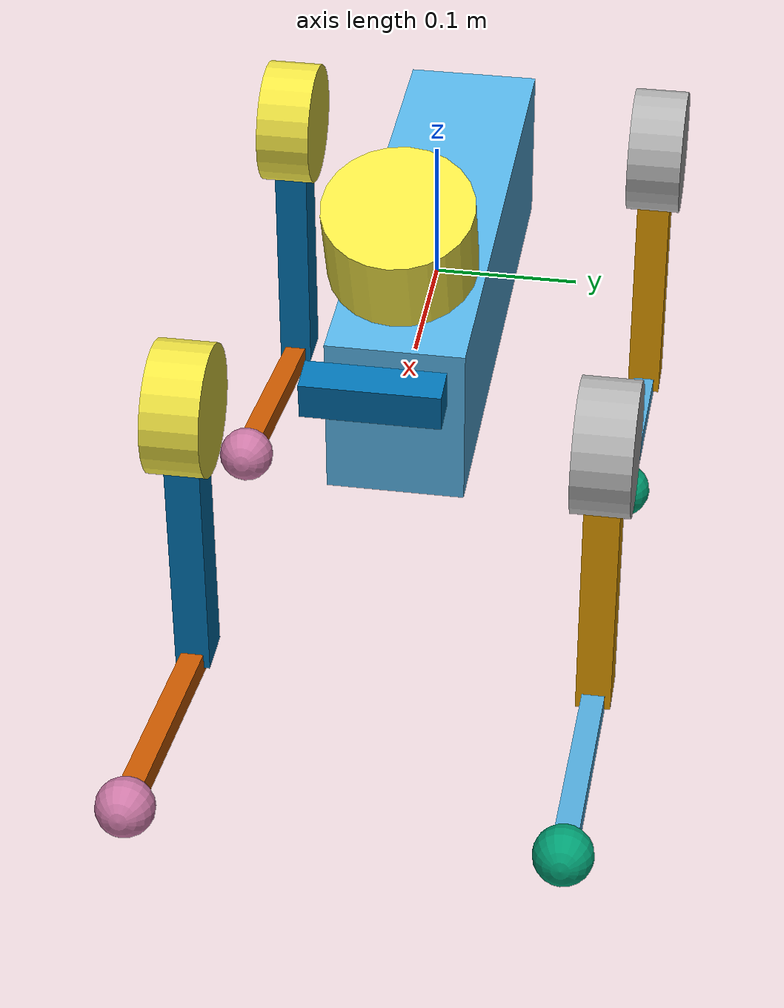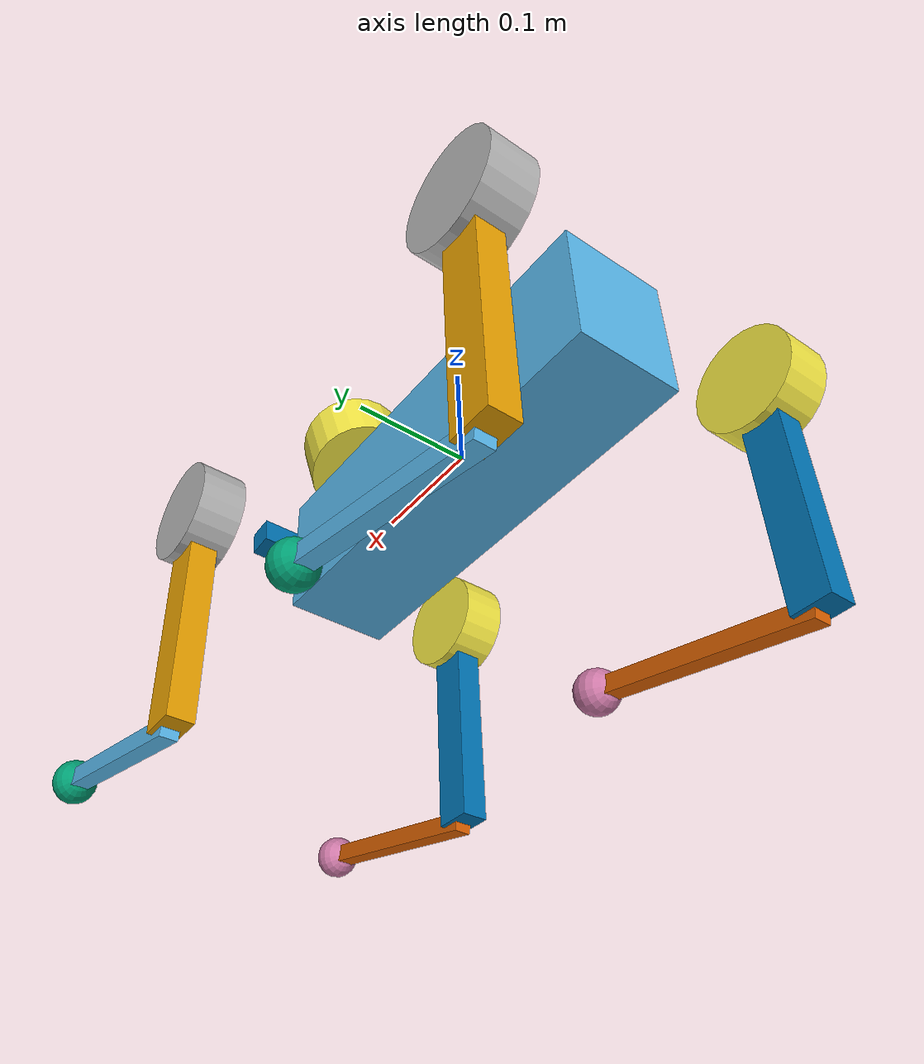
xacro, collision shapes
<?xml version="1.0"?>
<!--
  Go2 with standard gz_ros2_control + MID-360 + D435 sensors.
  Uses effort-only command interface (standard gz_ros2_control plugin).
-->
<robot name="go2" xmlns:xacro="http://www.ros.org/wiki/xacro">

  <!-- Go2 constants + materials + leg macro from upstream -->
  <xacro:include filename="$(find go2_description)/xacro/const.xacro"/>
  <xacro:include filename="$(find go2_description)/xacro/materials.xacro"/>
  <xacro:include filename="$(find go2_description)/xacro/leg.xacro"/>

  <!-- Our ros2_control config (standard gz_ros2_control, NOT custom gz_quadruped_hardware) -->
  <xacro:include filename="gazebo_ros2_control.xacro"/>

  <!-- Robot structure -->
  <link name="base">
    <visual>
      <geometry><box size="0.001 0.001 0.001"/></geometry>
    </visual>
  </link>

  <joint name="floating_base" type="fixed">
    <origin rpy="0 0 0" xyz="0 0 0"/>
    <parent link="base"/>
    <child link="trunk"/>
  </joint>

  <link name="trunk">
    <visual>
      <geometry>
        <mesh filename="file://$(find go2_description)/meshes/trunk.dae" scale="1 1 1"/>
      </geometry>
    </visual>
    <collision>
      <geometry><box size="${trunk_length} ${trunk_width} ${trunk_height}"/></geometry>
    </collision>
    <inertial>
      <origin rpy="0 0 0" xyz="${trunk_com_x} ${trunk_com_y} ${trunk_com_z}"/>
      <mass value="${trunk_mass}"/>
      <inertia ixx="${trunk_ixx}" ixy="${trunk_ixy}" ixz="${trunk_ixz}"
               iyy="${trunk_iyy}" iyz="${trunk_iyz}" izz="${trunk_izz}"/>
    </inertial>
  </link>

  <joint name="imu_joint" type="fixed">
    <parent link="trunk"/>
    <child link="imu_link"/>
    <origin rpy="0 0 0" xyz="0 0 0"/>
  </joint>

  <link name="imu_link">
    <inertial>
      <mass value="0.001"/>
      <inertia ixx="0.0001" ixy="0" ixz="0" iyy="0.0001" iyz="0" izz="0.0001"/>
    </inertial>
    <visual><geometry><box size="0.001 0.001 0.001"/></geometry></visual>
    <collision><geometry><box size="0.001 0.001 0.001"/></geometry></collision>
  </link>

  <!-- Legs -->
  <xacro:leg name="FR" mirror="-1" mirror_dae="False" front_hind="1" front_hind_dae="True"/>
  <xacro:leg name="FL" mirror="1" mirror_dae="True" front_hind="1" front_hind_dae="True"/>
  <xacro:leg name="RR" mirror="-1" mirror_dae="False" front_hind="-1" front_hind_dae="False"/>
  <xacro:leg name="RL" mirror="1" mirror_dae="True" front_hind="-1" front_hind_dae="False"/>

  <!-- External sensors -->
  <xacro:include filename="sensors.xacro"/>

</robot>

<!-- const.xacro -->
<robot xmlns:xacro="http://www.ros.org/wiki/xacro">

    <!-- Constants for robot dimensions -->
    <xacro:property name="PI" value="3.1415926535897931"/>
    <xacro:property name="stick_mass" value="0.00001"/>

    <!-- simplified collision value -->
    <xacro:property name="trunk_width" value="0.0935"/>
    <xacro:property name="trunk_length" value="0.3762"/>
    <xacro:property name="trunk_height" value="0.114"/>
    <xacro:property name="hip_radius" value="0.046"/>
    <xacro:property name="hip_length" value="0.04"/>
    <xacro:property name="thigh_shoulder_radius" value="0.041"/>
    <xacro:property name="thigh_shoulder_length" value="0.032"/>
    <xacro:property name="thigh_width" value="0.0245"/>
    <xacro:property name="thigh_height" value="0.034"/>
    <xacro:property name="calf_width" value="0.016"/>
    <xacro:property name="calf_height" value="0.016"/>
    <xacro:property name="foot_radius" value="0.02"/>
    <xacro:property name="stick_radius" value="0.01"/>
    <xacro:property name="stick_length" value="0.2"/>

    <!-- kinematic value -->
    <xacro:property name="thigh_offset" value="0.0955"/>
    <xacro:property name="thigh_length" value="0.213"/>
    <xacro:property name="calf_length" value="0.213"/>

    <!-- leg offset from trunk center value -->
    <xacro:property name="leg_offset_x" value="0.1934"/>
    <xacro:property name="leg_offset_y" value="0.0465"/>
    <xacro:property name="hip_offset" value="0.0955"/>

    <!-- offset of link locations (left front) -->
    <xacro:property name="hip_offset_x" value="0.1934"/>
    <xacro:property name="hip_offset_y" value="0.0465"/>
    <xacro:property name="hip_offset_z" value="0.0"/>

    <xacro:property name="thigh_offset_x" value="0"/>
    <xacro:property name="thigh_offset_y" value="0.0955"/>
    <xacro:property name="thigh_offset_z" value="0.0"/>

    <xacro:property name="calf_offset_x" value="0.0"/>
    <xacro:property name="calf_offset_y" value="0.0"/>
    <xacro:property name="calf_offset_z" value="-0.213"/>

    <!-- joint limits -->
    <xacro:property name="damping" value="0.0"/>
    <xacro:property name="friction" value="0.0"/>
    <xacro:property name="hip_position_max" value="1.0472"/>
    <xacro:property name="hip_position_min" value="-1.0472"/>
    <xacro:property name="hip_velocity_max" value="30.1"/>
    <xacro:property name="hip_torque_max" value="23.7"/>
    <xacro:property name="thigh_position_max" value="3.4907"/>
    <xacro:property name="thigh_position_min" value="-1.5708"/>
    <xacro:property name="thigh_velocity_max" value="30.1"/>
    <xacro:property name="thigh_torque_max" value="23.7"/>
    <xacro:property name="calf_position_max" value="-0.83776"/>
    <xacro:property name="calf_position_min" value="-2.7227"/>
    <xacro:property name="calf_velocity_max" value="20.06"/>
    <xacro:property name="calf_torque_max" value="35.55"/>

    <!-- dynamics inertial value -->
    <!-- trunk -->
    <xacro:property name="trunk_mass" value="6.921"/>
    <xacro:property name="trunk_com_x" value="0.021112"/>
    <xacro:property name="trunk_com_y" value="0.00"/>
    <xacro:property name="trunk_com_z" value="-0.005366"/>
    <xacro:property name="trunk_ixx" value="0.02448"/>
    <xacro:property name="trunk_ixy" value="0.00012166"/>
    <xacro:property name="trunk_ixz" value="0.0014849"/>
    <xacro:property name="trunk_iyy" value="0.098077"/>
    <xacro:property name="trunk_iyz" value="-3.12E-05"/>
    <xacro:property name="trunk_izz" value="0.107"/>

    <!-- hip (left front) -->
    <xacro:property name="hip_mass" value="0.678"/>
    <xacro:property name="hip_com_x" value="-0.0054"/>
    <xacro:property name="hip_com_y" value="0.00194"/>
    <xacro:property name="hip_com_z" value="-0.000105"/>
    <xacro:property name="hip_ixx" value="0.00048"/>
    <xacro:property name="hip_ixy" value="-3.01E-06"/>
    <xacro:property name="hip_ixz" value="1.11E-06"/>
    <xacro:property name="hip_iyy" value="0.000884"/>
    <xacro:property name="hip_iyz" value="-1.42E-06"/>
    <xacro:property name="hip_izz" value="0.000596"/>

    <!-- thigh -->
    <xacro:property name="thigh_mass" value="1.152"/>
    <xacro:property name="thigh_com_x" value="-0.00374"/>
    <xacro:property name="thigh_com_y" value="-0.0223"/>
    <xacro:property name="thigh_com_z" value="-0.0327"/>
    <xacro:property name="thigh_ixx" value="0.00584"/>
    <xacro:property name="thigh_ixy" value="8.72E-05"/>
    <xacro:property name="thigh_ixz" value="-0.000289"/>
    <xacro:property name="thigh_iyy" value="0.0058"/>
    <xacro:property name="thigh_iyz" value="0.000808"/>
    <xacro:property name="thigh_izz" value="0.00103"/>

    <!-- calf -->
    <xacro:property name="calf_mass" value="0.154"/>
    <xacro:property name="calf_com_x" value="0.00548"/>
    <xacro:property name="calf_com_y" value="-0.000975"/>
    <xacro:property name="calf_com_z" value="-0.115"/>
    <xacro:property name="calf_ixx" value="0.00108"/>
    <xacro:property name="calf_ixy" value="3.4E-07"/>
    <xacro:property name="calf_ixz" value="1.72E-05"/>
    <xacro:property name="calf_iyy" value="0.0011"/>
    <xacro:property name="calf_iyz" value="8.28E-06"/>
    <xacro:property name="calf_izz" value="3.29E-05"/>

    <!-- foot -->
    <xacro:property name="foot_mass" value="0.06"/>

</robot>

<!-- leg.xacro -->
<robot xmlns:xacro="http://www.ros.org/wiki/xacro">

    <xacro:include filename="$(find go2_description)/xacro/transmission.xacro"/>

    <xacro:macro name="leg" params="name mirror mirror_dae front_hind front_hind_dae">

        <joint name="${name}_hip_joint" type="revolute">
            <xacro:if value="${(mirror_dae == False) and (front_hind_dae == True)}">
                <origin rpy="0 0 0" xyz="${leg_offset_x} ${-leg_offset_y} 0"/>
            </xacro:if>
            <xacro:if value="${(mirror_dae == True) and (front_hind_dae == True)}">
                <origin rpy="0 0 0" xyz="${leg_offset_x} ${leg_offset_y} 0"/>
            </xacro:if>
            <xacro:if value="${(mirror_dae == False) and (front_hind_dae == False)}">
                <origin rpy="0 0 0" xyz="${-leg_offset_x} ${-leg_offset_y} 0"/>
            </xacro:if>
            <xacro:if value="${(mirror_dae == True) and (front_hind_dae == False)}">
                <origin rpy="0 0 0" xyz="${-leg_offset_x} ${leg_offset_y} 0"/>
            </xacro:if>
            <parent link="trunk"/>
            <child link="${name}_hip"/>
            <axis xyz="1 0 0"/>
            <dynamics damping="${damping}" friction="${friction}"/>
            <xacro:if value="${(mirror_dae == True)}">
                <limit effort="${hip_torque_max}" velocity="${hip_velocity_max}" lower="${hip_position_min}" upper="${hip_position_max}"/>
            </xacro:if>
            <xacro:if value="${(mirror_dae == False)}">
                <limit effort="${hip_torque_max}" velocity="${hip_velocity_max}" lower="${-hip_position_max}" upper="${-hip_position_min}"/>
            </xacro:if>
        </joint>

        <link name="${name}_hip">
            <visual>
                <xacro:if value="${(mirror_dae == True) and (front_hind_dae == True)}">
                    <origin rpy="0 0 0" xyz="0 0 0"/>
                </xacro:if>
                <xacro:if value="${(mirror_dae == False) and (front_hind_dae == True)}">
                    <origin rpy="${PI} 0 0" xyz="0 0 0"/>
                </xacro:if>
                <xacro:if value="${(mirror_dae == True) and (front_hind_dae == False)}">
                    <origin rpy="0 ${PI} 0" xyz="0 0 0"/>
                </xacro:if>
                <xacro:if value="${(mirror_dae == False) and (front_hind_dae == False)}">
                    <origin rpy="${PI} ${PI} 0" xyz="0 0 0"/>
                </xacro:if>
                <geometry>
                    <mesh filename="package://go2_description/meshes/hip.dae" scale="1 1 1"/>
                </geometry>
            </visual>
            <collision>
                <origin rpy="${PI/2.0} 0 0" xyz="0 ${hip_offset*mirror} 0"/>
                <geometry>
                    <cylinder length="${hip_length}" radius="${hip_radius}"/>
                </geometry>
            </collision>
            <inertial>
                <origin rpy="0 0 0" xyz="${hip_com_x*front_hind} ${hip_com_y*mirror} ${hip_com_z}"/>
                <mass value="${hip_mass}"/>
                <inertia
                    ixx="${hip_ixx}" ixy="${hip_ixy*mirror*front_hind}" ixz="${hip_ixz*front_hind}"
                    iyy="${hip_iyy}" iyz="${hip_iyz*mirror}"
                    izz="${hip_izz}"/>
            </inertial>
        </link>

        <joint name="${name}_thigh_joint" type="revolute">
            <origin rpy="0 0 0" xyz="0 ${thigh_offset*mirror} 0"/>
            <parent link="${name}_hip"/>
            <child link="${name}_thigh"/>
            <axis xyz="0 1 0"/>
            <dynamics damping="${damping}" friction="${friction}"/>
            <limit effort="${thigh_torque_max}" velocity="${thigh_velocity_max}" lower="${thigh_position_min}" upper="${thigh_position_max}"/>
        </joint>

        <link name="${name}_thigh">
            <visual>
                <origin rpy="0 0 0" xyz="0 0 0"/>
                <geometry>
                    <xacro:if value="${mirror_dae == True}">
                        <mesh filename="package://go2_description/meshes/thigh.dae" scale="1 1 1"/>
                    </xacro:if>
                    <xacro:if value="${mirror_dae == False}">
                        <mesh filename="package://go2_description/meshes/thigh_mirror.dae" scale="1 1 1"/>
                    </xacro:if>
                </geometry>
            </visual>
            <collision>
                <origin rpy="0 ${PI/2.0} 0" xyz="0 0 ${-thigh_length/2.0}"/>
                <geometry>
                    <box size="${thigh_length} ${thigh_width} ${thigh_height}"/>
                </geometry>
            </collision>
            <inertial>
                <origin rpy="0 0 0" xyz="${thigh_com_x} ${thigh_com_y*mirror} ${thigh_com_z}"/>
                <mass value="${thigh_mass}"/>
                <inertia
                    ixx="${thigh_ixx}" ixy="${thigh_ixy*mirror}" ixz="${thigh_ixz}"
                    iyy="${thigh_iyy}" iyz="${thigh_iyz*mirror}"
                    izz="${thigh_izz}"/>
            </inertial>
        </link>

        <joint name="${name}_calf_joint" type="revolute">
            <origin rpy="0 0 0" xyz="0 0 ${-thigh_length}"/>
            <parent link="${name}_thigh"/>
            <child link="${name}_calf"/>
            <axis xyz="0 1 0"/>
            <dynamics damping="${damping}" friction="${friction}"/>
            <limit effort="${calf_torque_max}" velocity="${calf_velocity_max}" lower="${calf_position_min}" upper="${calf_position_max}"/>
        </joint>

        <link name="${name}_calf">
            <visual>
                <origin rpy="0 0 0" xyz="0 0 0"/>
                <geometry>
                    <mesh filename="package://go2_description/meshes/calf.dae" scale="1 1 1"/>
                </geometry>
            </visual>
            <collision>
                <origin rpy="0 ${PI/2.0} 0" xyz="0 0 ${-calf_length/2.0}"/>
                <geometry>
                    <box size="${calf_length} ${calf_width} ${calf_height}"/>
                </geometry>
            </collision>
            <inertial>
                <origin rpy="0 0 0" xyz="${calf_com_x} ${calf_com_y} ${calf_com_z}"/>
                <mass value="${calf_mass}"/>
                <inertia
                    ixx="${calf_ixx}" ixy="${calf_ixy}" ixz="${calf_ixz}"
                    iyy="${calf_iyy}" iyz="${calf_iyz}"
                    izz="${calf_izz}"/>
            </inertial>
        </link>

        <joint name="${name}_foot_fixed" type="fixed">0
            <origin rpy="0 0 0" xyz="0 0 ${-(calf_length)}"/>
            <parent link="${name}_calf"/>
            <child link="${name}_foot"/>
        </joint>

        <link name="${name}_foot">
            <visual>
                <origin rpy="0 0 0" xyz="0 0 0"/>
                <geometry>
                    <sphere radius="${foot_radius-0.01}"/>
                </geometry>
            </visual>
            <collision>
                <origin rpy="0 0 0" xyz="0 0 0"/>
                <geometry>
                    <sphere radius="${foot_radius}"/>
                </geometry>
            </collision>
            <inertial>
                <mass value="${foot_mass}"/>
                <inertia
                    ixx="${(2*foot_mass)/5.0*(foot_radius*foot_radius)}" ixy="0.0" ixz="0.0"
                    iyy="${(2*foot_mass)/5.0*(foot_radius*foot_radius)}" iyz="0.0"
                    izz="${(2*foot_mass)/5.0*(foot_radius*foot_radius)}"/>
            </inertial>
        </link>

        <xacro:leg_transmission name="${name}"/>
    </xacro:macro>
</robot>

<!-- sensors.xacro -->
<robot xmlns:xacro="http://www.ros.org/wiki/xacro">

  <!-- Mesh path — absolute to avoid fragile relative paths -->
  <xacro:property name="sensor_mesh_dir"
    value="/home/yusen/Desktop/vector_os_nano/gazebo/models/go2/meshes/sensors"/>

  <!-- Livox MID-360 LiDAR                                          -->
  <!-- Shoulder-mounted, just behind head, 20 deg forward tilt      -->

  <joint name="mid360_joint" type="fixed">
    <parent link="trunk"/>
    <child link="mid360_link"/>
    <origin xyz="0.15 0.0 0.10" rpy="0 0.349 0"/>
  </joint>

  <link name="mid360_link">
    <inertial>
      <mass value="0.265"/>
      <origin xyz="0 0 0.03" rpy="0 0 0"/>
      <inertia ixx="0.0002" ixy="0" ixz="0" iyy="0.0002" iyz="0" izz="0.0003"/>
    </inertial>
    <visual>
      <origin xyz="0 0 0" rpy="0 0 0"/>
      <geometry>
        <mesh filename="file://${sensor_mesh_dir}/lidar_3d_v1.dae" scale="1 1 1"/>
      </geometry>
    </visual>
    <collision>
      <origin xyz="0 0 0.03" rpy="0 0 0"/>
      <geometry>
        <cylinder radius="0.05" length="0.06"/>
      </geometry>
    </collision>
  </link>

  <gazebo reference="mid360_link">
    <sensor name="mid360_lidar" type="gpu_lidar">
      <topic>/scan</topic>
      <gz_frame_id>mid360_link</gz_frame_id>
      <always_on>true</always_on>
      <update_rate>10</update_rate>
      <visualize>true</visualize>
      <lidar>
        <scan>
          <horizontal>
            <samples>360</samples>
            <resolution>1</resolution>
            <min_angle>-3.14159</min_angle>
            <max_angle>3.14159</max_angle>
          </horizontal>
          <vertical>
            <samples>30</samples>
            <resolution>1</resolution>
            <min_angle>-0.122</min_angle>
            <max_angle>0.908</max_angle>
          </vertical>
        </scan>
        <range>
          <min>0.1</min>
          <max>12.0</max>
          <resolution>0.01</resolution>
        </range>
      </lidar>
    </sensor>
  </gazebo>

  <!-- RealSense D435 RGB-D Camera                                   -->
  <!-- In front of MID-360, on head, 5 deg downward tilt            -->

  <joint name="d435_joint" type="fixed">
    <parent link="trunk"/>
    <child link="d435_link"/>
    <origin xyz="0.27 0.0 0.08" rpy="0 0.087 0"/>
  </joint>

  <link name="d435_link">
    <inertial>
      <mass value="0.072"/>
      <origin xyz="0 0 0" rpy="0 0 0"/>
      <inertia ixx="0.00005" ixy="0" ixz="0" iyy="0.00005" iyz="0" izz="0.00003"/>
    </inertial>
    <visual>
      <origin xyz="0 0 0" rpy="0 0 1.5708"/>
      <geometry>
        <mesh filename="file://${sensor_mesh_dir}/realsense.dae" scale="1 1 1"/>
      </geometry>
    </visual>
    <collision>
      <origin xyz="0 0 0" rpy="0 0 0"/>
      <geometry>
        <box size="0.025 0.09 0.025"/>
      </geometry>
    </collision>
  </link>

  <gazebo reference="d435_link">
    <sensor name="d435_rgb" type="camera">
      <topic>/camera/image</topic>
      <gz_frame_id>d435_link</gz_frame_id>
      <always_on>true</always_on>
      <update_rate>30</update_rate>
      <visualize>false</visualize>
      <camera>
        <horizontal_fov>1.20</horizontal_fov>
        <image>
          <width>640</width>
          <height>480</height>
          <format>R8G8B8</format>
        </image>
        <clip>
          <near>0.1</near>
          <far>15.0</far>
        </clip>
        <optical_frame_id>d435_link</optical_frame_id>
        <camera_info_topic>/camera/camera_info</camera_info_topic>
      </camera>
    </sensor>
  </gazebo>

  <gazebo reference="d435_link">
    <sensor name="d435_depth" type="depth_camera">
      <topic>/camera/depth</topic>
      <gz_frame_id>d435_link</gz_frame_id>
      <always_on>true</always_on>
      <update_rate>30</update_rate>
      <visualize>false</visualize>
      <camera>
        <horizontal_fov>1.20</horizontal_fov>
        <image>
          <width>640</width>
          <height>480</height>
          <format>R_FLOAT32</format>
        </image>
        <clip>
          <near>0.3</near>
          <far>10.0</far>
        </clip>
      </camera>
    </sensor>
  </gazebo>

  <!-- Odometry publisher plugin (Gazebo doesn't publish odom by    -->
  <!-- default — need this for /state_estimation via bridge)        -->

  <gazebo>
    <plugin filename="gz-sim-odometry-publisher-system"
            name="gz::sim::systems::OdometryPublisher">
      <odom_frame>odom</odom_frame>
      <robot_base_frame>base</robot_base_frame>
      <odom_publish_frequency>50</odom_publish_frequency>
      <odom_topic>/model/go2/odometry</odom_topic>
    </plugin>
  </gazebo>

</robot>
